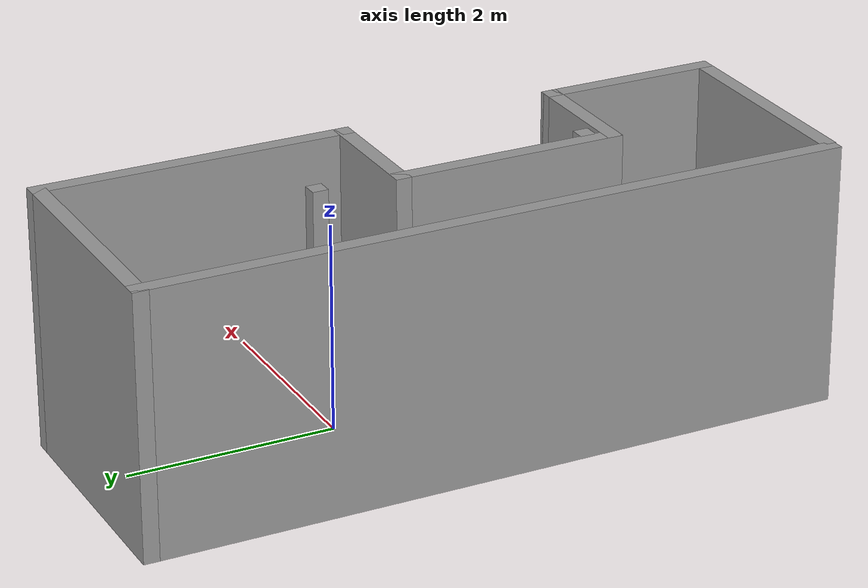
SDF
<?xml version='1.0'?>
<sdf version='1.7'>
  <model name='Two_Rooms'>
    <pose>-0.316739 -0.916304 0 0 -0 0</pose>
    <link name='Door_2'>
      <collision name='Door_2_Collision'>
        <geometry>
          <box>
            <size>0.98 0.2 2</size>
          </box>
        </geometry>
        <pose>0 0 1 0 -0 0</pose>
      </collision>
      <visual name='Door_2_Visual'>
        <pose>0 0 1 0 -0 0</pose>
        <geometry>
          <box>
            <size>0.98 0.2 2</size>
          </box>
        </geometry>
        <material>
          <script>
            <uri>file://media/materials/scripts/gazebo.material</uri>
            <name>Gazebo/Grey</name>
          </script>
        </material>
      </visual>
      <pose>-0.565 0.375 0 0 -0 0</pose>
    </link>
    <link name='Wall_19'>
      <collision name='Wall_19_Collision'>
        <geometry>
          <box>
            <size>0.15 0.15 2.5</size>
          </box>
        </geometry>
        <pose>0 0 1.25 0 -0 0</pose>
      </collision>
      <visual name='Wall_19_Visual'>
        <pose>0 0 1.25 0 -0 0</pose>
        <geometry>
          <box>
            <size>0.15 0.15 2.5</size>
          </box>
        </geometry>
        <material>
          <script>
            <uri>file://media/materials/scripts/gazebo.material</uri>
            <name>Gazebo/Grey</name>
          </script>
          <ambient>1 1 1 1</ambient>
        </material>
        <meta>
          <layer>0</layer>
        </meta>
      </visual>
      <pose>0.065 1.155 0 0 -0 0</pose>
    </link>
    <link name='Wall_22'>
      <collision name='Wall_22_Collision'>
        <geometry>
          <box>
            <size>3.06 0.15 2.5</size>
          </box>
        </geometry>
        <pose>0 0 1.25 0 -0 0</pose>
      </collision>
      <visual name='Wall_22_Visual'>
        <pose>0 0 1.25 0 -0 0</pose>
        <geometry>
          <box>
            <size>3.06 0.15 2.5</size>
          </box>
        </geometry>
        <material>
          <script>
            <uri>file://media/materials/scripts/gazebo.material</uri>
            <name>Gazebo/Grey</name>
          </script>
          <ambient>1 1 1 1</ambient>
        </material>
        <meta>
          <layer>0</layer>
        </meta>
      </visual>
      <pose>1.125 1.85 0 0 -0 1.5708</pose>
    </link>
    <link name='Wall_23'>
      <collision name='Wall_23_Collision'>
        <geometry>
          <box>
            <size>2.38 0.15 2.5</size>
          </box>
        </geometry>
        <pose>0 0 1.25 0 -0 0</pose>
      </collision>
      <visual name='Wall_23_Visual'>
        <pose>0 0 1.25 0 -0 0</pose>
        <geometry>
          <box>
            <size>2.38 0.15 2.5</size>
          </box>
        </geometry>
        <material>
          <script>
            <uri>file://media/materials/scripts/gazebo.material</uri>
            <name>Gazebo/Grey</name>
          </script>
          <ambient>1 1 1 1</ambient>
        </material>
        <meta>
          <layer>0</layer>
        </meta>
      </visual>
      <pose>-0.01 3.305 0 0 -0 3.14159</pose>
    </link>
    <link name='Wall_24'>
      <collision name='Wall_24_Collision'>
        <geometry>
          <box>
            <size>6.75 0.15 2.5</size>
          </box>
        </geometry>
        <pose>0 0 1.25 0 -0 0</pose>
      </collision>
      <visual name='Wall_24_Visual'>
        <pose>0 0 1.25 0 -0 0</pose>
        <geometry>
          <box>
            <size>6.75 0.15 2.5</size>
          </box>
        </geometry>
        <material>
          <script>
            <uri>file://media/materials/scripts/gazebo.material</uri>
            <name>Gazebo/Grey</name>
          </script>
          <ambient>1 1 1 1</ambient>
        </material>
        <meta>
          <layer>0</layer>
        </meta>
      </visual>
      <pose>-1.125 0.005 0 0 -0 -1.5708</pose>
    </link>
    <link name='Wall_37'>
      <collision name='Wall_37_Collision'>
        <geometry>
          <box>
            <size>1.27 0.15 2.5</size>
          </box>
        </geometry>
        <pose>0 0 1.25 0 -0 0</pose>
      </collision>
      <visual name='Wall_37_Visual'>
        <pose>0 0 1.25 0 -0 0</pose>
        <geometry>
          <box>
            <size>1.27 0.15 2.5</size>
          </box>
        </geometry>
        <material>
          <script>
            <uri>file://media/materials/scripts/gazebo.material</uri>
            <name>Gazebo/Grey</name>
          </script>
          <ambient>1 1 1 1</ambient>
        </material>
        <meta>
          <layer>0</layer>
        </meta>
      </visual>
      <pose>0.545 0.395 0 0 -0 3.14159</pose>
    </link>
    <link name='Wall_42'>
      <collision name='Wall_42_Collision'>
        <geometry>
          <box>
            <size>0.15 0.15 2.5</size>
          </box>
        </geometry>
        <pose>0 0 1.25 0 -0 0</pose>
      </collision>
      <visual name='Wall_42_Visual'>
        <pose>0 0 1.25 0 -0 0</pose>
        <geometry>
          <box>
            <size>0.15 0.15 2.5</size>
          </box>
        </geometry>
        <material>
          <script>
            <uri>file://media/materials/scripts/gazebo.material</uri>
            <name>Gazebo/Grey</name>
          </script>
          <ambient>1 1 1 1</ambient>
        </material>
        <meta>
          <layer>0</layer>
        </meta>
      </visual>
      <pose>0.125 -1.505 0 0 -0 0</pose>
    </link>
    <link name='Wall_45'>
      <collision name='Wall_45_Collision'>
        <geometry>
          <box>
            <size>2.25 0.15 2.5</size>
          </box>
        </geometry>
        <pose>0 0 1.25 0 -0 0</pose>
      </collision>
      <visual name='Wall_45_Visual'>
        <pose>0 0 1.25 0 -0 0</pose>
        <geometry>
          <box>
            <size>2.25 0.15 2.5</size>
          </box>
        </geometry>
        <material>
          <script>
            <uri>file://media/materials/scripts/gazebo.material</uri>
            <name>Gazebo/Grey</name>
          </script>
          <ambient>1 1 1 1</ambient>
        </material>
        <meta>
          <layer>0</layer>
        </meta>
      </visual>
      <pose>-0.015 -0.655 0 0 -0 -1.5708</pose>
    </link>
    <link name='Wall_46'>
      <collision name='Wall_46_Collision'>
        <geometry>
          <box>
            <size>1.25 0.15 2.5</size>
          </box>
        </geometry>
        <pose>0 0 1.25 0 -0 0</pose>
      </collision>
      <visual name='Wall_46_Visual'>
        <pose>0 0 1.25 0 -0 0</pose>
        <geometry>
          <box>
            <size>1.25 0.15 2.5</size>
          </box>
        </geometry>
        <material>
          <script>
            <uri>file://media/materials/scripts/gazebo.material</uri>
            <name>Gazebo/Grey</name>
          </script>
          <ambient>1 1 1 1</ambient>
        </material>
        <meta>
          <layer>0</layer>
        </meta>
      </visual>
      <pose>0.535 -1.705 0 0 -0 0</pose>
    </link>
    <link name='Wall_48'>
      <collision name='Wall_48_Collision'>
        <geometry>
          <box>
            <size>1.75 0.15 2.5</size>
          </box>
        </geometry>
        <pose>0 0 1.25 0 -0 0</pose>
      </collision>
      <visual name='Wall_48_Visual'>
        <pose>0 0 1.25 0 -0 0</pose>
        <geometry>
          <box>
            <size>1.75 0.15 2.5</size>
          </box>
        </geometry>
        <material>
          <script>
            <uri>file://media/materials/scripts/gazebo.material</uri>
            <name>Gazebo/Grey</name>
          </script>
          <ambient>1 1 1 1</ambient>
        </material>
        <meta>
          <layer>0</layer>
        </meta>
      </visual>
      <pose>1.085 -2.505 0 0 -0 -1.5708</pose>
    </link>
    <link name='Wall_49'>
      <collision name='Wall_49_Collision'>
        <geometry>
          <box>
            <size>2.25 0.15 2.5</size>
          </box>
        </geometry>
        <pose>0 0 1.25 0 -0 0</pose>
      </collision>
      <visual name='Wall_49_Visual'>
        <pose>0 0 1.25 0 -0 0</pose>
        <geometry>
          <box>
            <size>2.25 0.15 2.5</size>
          </box>
        </geometry>
        <material>
          <script>
            <uri>file://media/materials/scripts/gazebo.material</uri>
            <name>Gazebo/Grey</name>
          </script>
          <ambient>1 1 1 1</ambient>
        </material>
        <meta>
          <layer>0</layer>
        </meta>
      </visual>
      <pose>0.035 -3.305 0 0 -0 3.14159</pose>
    </link>
    <static>1</static>
  </model>
</sdf>
